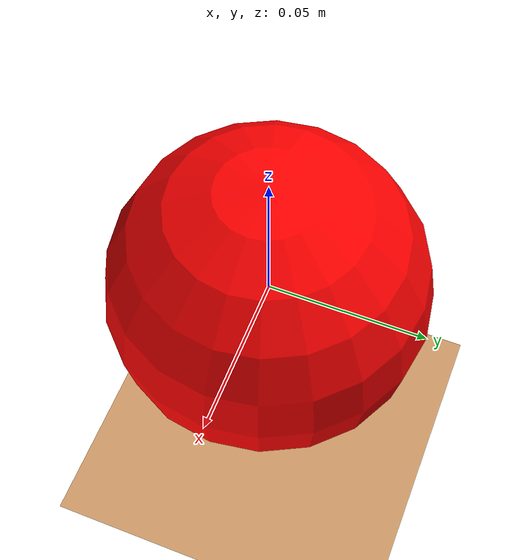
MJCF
<mujoco model="bouncyball">
  <compiler angle="radian" coordinate="local" inertiafromgeom="true" meshdir="meshes/"/>
    <option	timestep="0.00125" iterations="50" solver="PGS" tolerance="1e-6" gravity="0 0 -9.81">
    </option>

    <default>
        <geom contype='1' conaffinity='1' condim='1' rgba='0.8 0.6 .4 1'
        margin="0.0" solref=".04 0.05" solimp=".8 .8 .1"/>
    </default>

    <custom>
        <numeric name="snsr_covar" size="29" data="
        1e+2
        1e-6
        1e+1
        1e+1
        1e-4
        1e-3
        1e-0

        1e-6
        1e-6

        1e-0
        1e-0
        1e-2 1e-0 1e-0 1e-0
        1e-5

        1e-8

        1e-5
        1e-5
        1e-5
        1e-5
        1e-5
        1e-5
        1e-5
        1e-5
        1e-5
        1e-5
        1e-5
        1e-5
        "
        />
      <numeric name="covar_diag" size="4" data="
        1e+2
        1e+1

        1e-2
        1e-2
        "
        />

    </custom>

    <asset>
      <material name="boring" reflectance="0.00005" rgba="0.7 0.6 0.6 1" shininess="1" specular=".1"/>
    </asset>

    <worldbody>
      <geom material="boring" pos="0 0 -0.1" size=".5 .5 .5" type="plane"/>
      <body pos="0 0 0">
        <joint name="rootx" type="slide" axis="1 0 0" pos="0 0 0" limited="false" range="-1 1" />
        <joint name="rootz" type="slide" axis="0 0 1" pos="0 0 0" limited="false" range="-1 1" />
        <site name="imu" pos="0 0 0" type="box" size="0.0158 0.0158 0.004" rgba="1 0 0 1" />

        <geom name="ball" type="sphere" size="0.05" rgba="1 0 0 1"/>
      </body>
    </worldbody>

    <sensor>

      <framepos name="mocap" objtype='site' objname="imu" />
    </sensor>

    <actuator>
      <motor name='right_movement' joint='rootx'/>
      <motor name='rht_movement' joint='rootz'/>
    </actuator>

  </mujoco>
